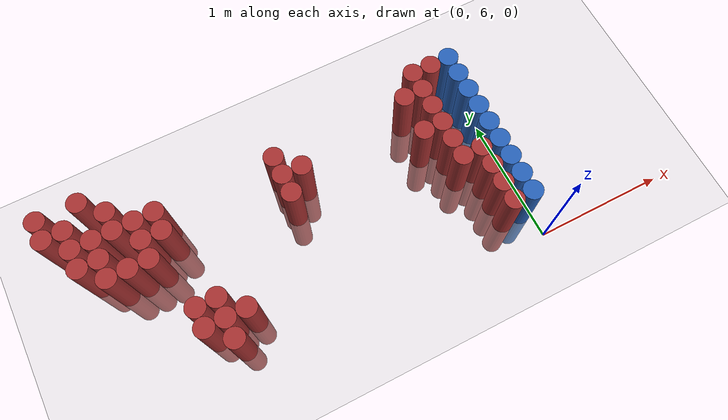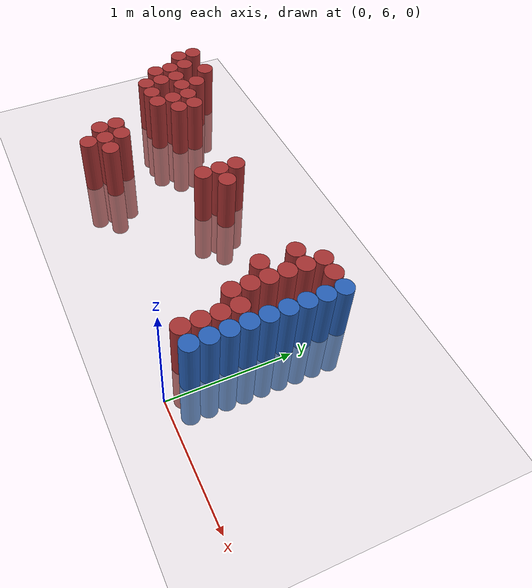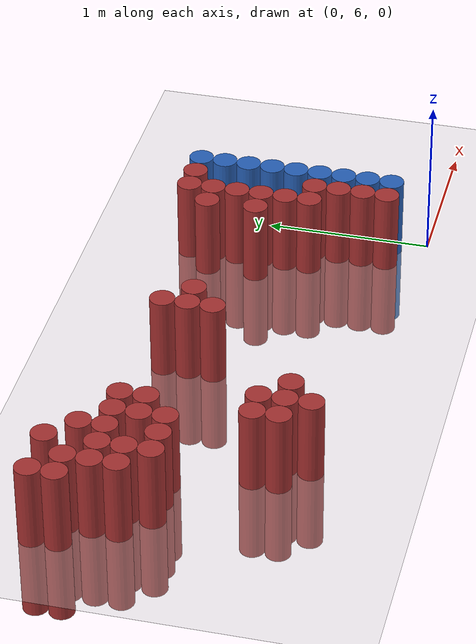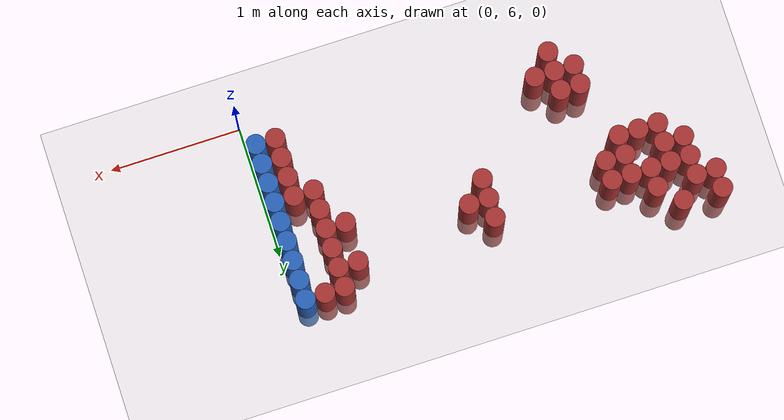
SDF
<sdf version="1.6">
 <world name="default">
  <model name="ground_plane">
   <static>1</static>
   <link name="link">
    <collision name="collision">
     <geometry><plane><normal>0 0 1</normal><size>100 100</size></plane></geometry>
     <surface><friction><ode><mu>100</mu><mu2>50</mu2></ode></friction></surface>
    </collision>
    <visual name="visual">
     <cast_shadows>0</cast_shadows>
     <geometry><plane><normal>0 0 1</normal><size>100 100</size></plane></geometry>
     <material>
      <script><uri>file://media/materials/scripts/gazebo.material</uri><name>Gazebo/Grey</name></script>
     </material>
    </visual>
   </link>
  </model>
  <model name="unit_cylinder_168">
   <static>1</static>
   <pose>-3.225000 7.425000 0.000000 0.000000 0.000000 0.000000</pose>
   <link name="link">
    <inertial>
     <mass>1</mass>
     <inertia><ixx>0.145833</ixx><ixy>0</ixy><ixz>0</ixz><iyy>0.145833</iyy><iyz>0</iyz><izz>0.125</izz></inertia>
    </inertial>
    <collision name="collision">
     <geometry><cylinder><radius>0.075000</radius><length>1</length></cylinder></geometry>
    </collision>
    <visual name="visual">
     <geometry><cylinder><radius>0.075000</radius><length>1</length></cylinder></geometry>
     <material>
      <ambient>0.648000 0.192000 0.192000 1</ambient>
      <diffuse>0.648000 0.192000 0.192000 1</diffuse>
     </material>
     <material>
      <script><name>Gazebo/Grey</name><uri>file://media/materials/scripts/gazebo.material</uri></script>
     </material>
    </visual>
   </link>
  </model>
  <model name="unit_cylinder_169">
   <static>1</static>
   <pose>-3.225000 7.575000 0.000000 0.000000 0.000000 0.000000</pose>
   <link name="link">
    <inertial>
     <mass>1</mass>
     <inertia><ixx>0.145833</ixx><ixy>0</ixy><ixz>0</ixz><iyy>0.145833</iyy><iyz>0</iyz><izz>0.125</izz></inertia>
    </inertial>
    <collision name="collision">
     <geometry><cylinder><radius>0.075000</radius><length>1</length></cylinder></geometry>
    </collision>
    <visual name="visual">
     <geometry><cylinder><radius>0.075000</radius><length>1</length></cylinder></geometry>
     <material>
      <ambient>0.648000 0.192000 0.192000 1</ambient>
      <diffuse>0.648000 0.192000 0.192000 1</diffuse>
     </material>
     <material>
      <script><name>Gazebo/Grey</name><uri>file://media/materials/scripts/gazebo.material</uri></script>
     </material>
    </visual>
   </link>
  </model>
  <model name="unit_cylinder_171">
   <static>1</static>
   <pose>-3.075000 7.125000 0.000000 0.000000 0.000000 0.000000</pose>
   <link name="link">
    <inertial>
     <mass>1</mass>
     <inertia><ixx>0.145833</ixx><ixy>0</ixy><ixz>0</ixz><iyy>0.145833</iyy><iyz>0</iyz><izz>0.125</izz></inertia>
    </inertial>
    <collision name="collision">
     <geometry><cylinder><radius>0.075000</radius><length>1</length></cylinder></geometry>
    </collision>
    <visual name="visual">
     <geometry><cylinder><radius>0.075000</radius><length>1</length></cylinder></geometry>
     <material>
      <ambient>0.648000 0.192000 0.192000 1</ambient>
      <diffuse>0.648000 0.192000 0.192000 1</diffuse>
     </material>
     <material>
      <script><name>Gazebo/Grey</name><uri>file://media/materials/scripts/gazebo.material</uri></script>
     </material>
    </visual>
   </link>
  </model>
  <model name="unit_cylinder_172">
   <static>1</static>
   <pose>-3.075000 7.275000 0.000000 0.000000 0.000000 0.000000</pose>
   <link name="link">
    <inertial>
     <mass>1</mass>
     <inertia><ixx>0.145833</ixx><ixy>0</ixy><ixz>0</ixz><iyy>0.145833</iyy><iyz>0</iyz><izz>0.125</izz></inertia>
    </inertial>
    <collision name="collision">
     <geometry><cylinder><radius>0.075000</radius><length>1</length></cylinder></geometry>
    </collision>
    <visual name="visual">
     <geometry><cylinder><radius>0.075000</radius><length>1</length></cylinder></geometry>
     <material>
      <ambient>0.648000 0.192000 0.192000 1</ambient>
      <diffuse>0.648000 0.192000 0.192000 1</diffuse>
     </material>
     <material>
      <script><name>Gazebo/Grey</name><uri>file://media/materials/scripts/gazebo.material</uri></script>
     </material>
    </visual>
   </link>
  </model>
  <model name="unit_cylinder_173">
   <static>1</static>
   <pose>-3.075000 7.425000 0.000000 0.000000 0.000000 0.000000</pose>
   <link name="link">
    <inertial>
     <mass>1</mass>
     <inertia><ixx>0.145833</ixx><ixy>0</ixy><ixz>0</ixz><iyy>0.145833</iyy><iyz>0</iyz><izz>0.125</izz></inertia>
    </inertial>
    <collision name="collision">
     <geometry><cylinder><radius>0.075000</radius><length>1</length></cylinder></geometry>
    </collision>
    <visual name="visual">
     <geometry><cylinder><radius>0.075000</radius><length>1</length></cylinder></geometry>
     <material>
      <ambient>0.648000 0.192000 0.192000 1</ambient>
      <diffuse>0.648000 0.192000 0.192000 1</diffuse>
     </material>
     <material>
      <script><name>Gazebo/Grey</name><uri>file://media/materials/scripts/gazebo.material</uri></script>
     </material>
    </visual>
   </link>
  </model>
  <model name="unit_cylinder_174">
   <static>1</static>
   <pose>-2.925000 6.975000 0.000000 0.000000 0.000000 0.000000</pose>
   <link name="link">
    <inertial>
     <mass>1</mass>
     <inertia><ixx>0.145833</ixx><ixy>0</ixy><ixz>0</ixz><iyy>0.145833</iyy><iyz>0</iyz><izz>0.125</izz></inertia>
    </inertial>
    <collision name="collision">
     <geometry><cylinder><radius>0.075000</radius><length>1</length></cylinder></geometry>
    </collision>
    <visual name="visual">
     <geometry><cylinder><radius>0.075000</radius><length>1</length></cylinder></geometry>
     <material>
      <ambient>0.648000 0.192000 0.192000 1</ambient>
      <diffuse>0.648000 0.192000 0.192000 1</diffuse>
     </material>
     <material>
      <script><name>Gazebo/Grey</name><uri>file://media/materials/scripts/gazebo.material</uri></script>
     </material>
    </visual>
   </link>
  </model>
  <model name="unit_cylinder_175">
   <static>1</static>
   <pose>-2.925000 7.125000 0.000000 0.000000 0.000000 0.000000</pose>
   <link name="link">
    <inertial>
     <mass>1</mass>
     <inertia><ixx>0.145833</ixx><ixy>0</ixy><ixz>0</ixz><iyy>0.145833</iyy><iyz>0</iyz><izz>0.125</izz></inertia>
    </inertial>
    <collision name="collision">
     <geometry><cylinder><radius>0.075000</radius><length>1</length></cylinder></geometry>
    </collision>
    <visual name="visual">
     <geometry><cylinder><radius>0.075000</radius><length>1</length></cylinder></geometry>
     <material>
      <ambient>0.648000 0.192000 0.192000 1</ambient>
      <diffuse>0.648000 0.192000 0.192000 1</diffuse>
     </material>
     <material>
      <script><name>Gazebo/Grey</name><uri>file://media/materials/scripts/gazebo.material</uri></script>
     </material>
    </visual>
   </link>
  </model>
  <model name="unit_cylinder_176">
   <static>1</static>
   <pose>-2.925000 7.275000 0.000000 0.000000 0.000000 0.000000</pose>
   <link name="link">
    <inertial>
     <mass>1</mass>
     <inertia><ixx>0.145833</ixx><ixy>0</ixy><ixz>0</ixz><iyy>0.145833</iyy><iyz>0</iyz><izz>0.125</izz></inertia>
    </inertial>
    <collision name="collision">
     <geometry><cylinder><radius>0.075000</radius><length>1</length></cylinder></geometry>
    </collision>
    <visual name="visual">
     <geometry><cylinder><radius>0.075000</radius><length>1</length></cylinder></geometry>
     <material>
      <ambient>0.648000 0.192000 0.192000 1</ambient>
      <diffuse>0.648000 0.192000 0.192000 1</diffuse>
     </material>
     <material>
      <script><name>Gazebo/Grey</name><uri>file://media/materials/scripts/gazebo.material</uri></script>
     </material>
    </visual>
   </link>
  </model>
  <model name="unit_cylinder_177">
   <static>1</static>
   <pose>-2.925000 7.575000 0.000000 0.000000 0.000000 0.000000</pose>
   <link name="link">
    <inertial>
     <mass>1</mass>
     <inertia><ixx>0.145833</ixx><ixy>0</ixy><ixz>0</ixz><iyy>0.145833</iyy><iyz>0</iyz><izz>0.125</izz></inertia>
    </inertial>
    <collision name="collision">
     <geometry><cylinder><radius>0.075000</radius><length>1</length></cylinder></geometry>
    </collision>
    <visual name="visual">
     <geometry><cylinder><radius>0.075000</radius><length>1</length></cylinder></geometry>
     <material>
      <ambient>0.648000 0.192000 0.192000 1</ambient>
      <diffuse>0.648000 0.192000 0.192000 1</diffuse>
     </material>
     <material>
      <script><name>Gazebo/Grey</name><uri>file://media/materials/scripts/gazebo.material</uri></script>
     </material>
    </visual>
   </link>
  </model>
  <model name="unit_cylinder_178">
   <static>1</static>
   <pose>-2.775000 6.975000 0.000000 0.000000 0.000000 0.000000</pose>
   <link name="link">
    <inertial>
     <mass>1</mass>
     <inertia><ixx>0.145833</ixx><ixy>0</ixy><ixz>0</ixz><iyy>0.145833</iyy><iyz>0</iyz><izz>0.125</izz></inertia>
    </inertial>
    <collision name="collision">
     <geometry><cylinder><radius>0.075000</radius><length>1</length></cylinder></geometry>
    </collision>
    <visual name="visual">
     <geometry><cylinder><radius>0.075000</radius><length>1</length></cylinder></geometry>
     <material>
      <ambient>0.648000 0.192000 0.192000 1</ambient>
      <diffuse>0.648000 0.192000 0.192000 1</diffuse>
     </material>
     <material>
      <script><name>Gazebo/Grey</name><uri>file://media/materials/scripts/gazebo.material</uri></script>
     </material>
    </visual>
   </link>
  </model>
  <model name="unit_cylinder_179">
   <static>1</static>
   <pose>-2.775000 7.275000 0.000000 0.000000 0.000000 0.000000</pose>
   <link name="link">
    <inertial>
     <mass>1</mass>
     <inertia><ixx>0.145833</ixx><ixy>0</ixy><ixz>0</ixz><iyy>0.145833</iyy><iyz>0</iyz><izz>0.125</izz></inertia>
    </inertial>
    <collision name="collision">
     <geometry><cylinder><radius>0.075000</radius><length>1</length></cylinder></geometry>
    </collision>
    <visual name="visual">
     <geometry><cylinder><radius>0.075000</radius><length>1</length></cylinder></geometry>
     <material>
      <ambient>0.648000 0.192000 0.192000 1</ambient>
      <diffuse>0.648000 0.192000 0.192000 1</diffuse>
     </material>
     <material>
      <script><name>Gazebo/Grey</name><uri>file://media/materials/scripts/gazebo.material</uri></script>
     </material>
    </visual>
   </link>
  </model>
  <model name="unit_cylinder_180">
   <static>1</static>
   <pose>-2.775000 7.425000 0.000000 0.000000 0.000000 0.000000</pose>
   <link name="link">
    <inertial>
     <mass>1</mass>
     <inertia><ixx>0.145833</ixx><ixy>0</ixy><ixz>0</ixz><iyy>0.145833</iyy><iyz>0</iyz><izz>0.125</izz></inertia>
    </inertial>
    <collision name="collision">
     <geometry><cylinder><radius>0.075000</radius><length>1</length></cylinder></geometry>
    </collision>
    <visual name="visual">
     <geometry><cylinder><radius>0.075000</radius><length>1</length></cylinder></geometry>
     <material>
      <ambient>0.648000 0.192000 0.192000 1</ambient>
      <diffuse>0.648000 0.192000 0.192000 1</diffuse>
     </material>
     <material>
      <script><name>Gazebo/Grey</name><uri>file://media/materials/scripts/gazebo.material</uri></script>
     </material>
    </visual>
   </link>
  </model>
  <model name="unit_cylinder_182">
   <static>1</static>
   <pose>-2.625000 6.975000 0.000000 0.000000 0.000000 0.000000</pose>
   <link name="link">
    <inertial>
     <mass>1</mass>
     <inertia><ixx>0.145833</ixx><ixy>0</ixy><ixz>0</ixz><iyy>0.145833</iyy><iyz>0</iyz><izz>0.125</izz></inertia>
    </inertial>
    <collision name="collision">
     <geometry><cylinder><radius>0.075000</radius><length>1</length></cylinder></geometry>
    </collision>
    <visual name="visual">
     <geometry><cylinder><radius>0.075000</radius><length>1</length></cylinder></geometry>
     <material>
      <ambient>0.648000 0.192000 0.192000 1</ambient>
      <diffuse>0.648000 0.192000 0.192000 1</diffuse>
     </material>
     <material>
      <script><name>Gazebo/Grey</name><uri>file://media/materials/scripts/gazebo.material</uri></script>
     </material>
    </visual>
   </link>
  </model>
  <model name="unit_cylinder_183">
   <static>1</static>
   <pose>-2.625000 7.125000 0.000000 0.000000 0.000000 0.000000</pose>
   <link name="link">
    <inertial>
     <mass>1</mass>
     <inertia><ixx>0.145833</ixx><ixy>0</ixy><ixz>0</ixz><iyy>0.145833</iyy><iyz>0</iyz><izz>0.125</izz></inertia>
    </inertial>
    <collision name="collision">
     <geometry><cylinder><radius>0.075000</radius><length>1</length></cylinder></geometry>
    </collision>
    <visual name="visual">
     <geometry><cylinder><radius>0.075000</radius><length>1</length></cylinder></geometry>
     <material>
      <ambient>0.648000 0.192000 0.192000 1</ambient>
      <diffuse>0.648000 0.192000 0.192000 1</diffuse>
     </material>
     <material>
      <script><name>Gazebo/Grey</name><uri>file://media/materials/scripts/gazebo.material</uri></script>
     </material>
    </visual>
   </link>
  </model>
  <model name="unit_cylinder_184">
   <static>1</static>
   <pose>-2.625000 7.275000 0.000000 0.000000 0.000000 0.000000</pose>
   <link name="link">
    <inertial>
     <mass>1</mass>
     <inertia><ixx>0.145833</ixx><ixy>0</ixy><ixz>0</ixz><iyy>0.145833</iyy><iyz>0</iyz><izz>0.125</izz></inertia>
    </inertial>
    <collision name="collision">
     <geometry><cylinder><radius>0.075000</radius><length>1</length></cylinder></geometry>
    </collision>
    <visual name="visual">
     <geometry><cylinder><radius>0.075000</radius><length>1</length></cylinder></geometry>
     <material>
      <ambient>0.648000 0.192000 0.192000 1</ambient>
      <diffuse>0.648000 0.192000 0.192000 1</diffuse>
     </material>
     <material>
      <script><name>Gazebo/Grey</name><uri>file://media/materials/scripts/gazebo.material</uri></script>
     </material>
    </visual>
   </link>
  </model>
  <model name="unit_cylinder_188">
   <static>1</static>
   <pose>-2.475000 6.375000 0.000000 0.000000 0.000000 0.000000</pose>
   <link name="link">
    <inertial>
     <mass>1</mass>
     <inertia><ixx>0.145833</ixx><ixy>0</ixy><ixz>0</ixz><iyy>0.145833</iyy><iyz>0</iyz><izz>0.125</izz></inertia>
    </inertial>
    <collision name="collision">
     <geometry><cylinder><radius>0.075000</radius><length>1</length></cylinder></geometry>
    </collision>
    <visual name="visual">
     <geometry><cylinder><radius>0.075000</radius><length>1</length></cylinder></geometry>
     <material>
      <ambient>0.648000 0.192000 0.192000 1</ambient>
      <diffuse>0.648000 0.192000 0.192000 1</diffuse>
     </material>
     <material>
      <script><name>Gazebo/Grey</name><uri>file://media/materials/scripts/gazebo.material</uri></script>
     </material>
    </visual>
   </link>
  </model>
  <model name="unit_cylinder_189">
   <static>1</static>
   <pose>-2.475000 6.525000 0.000000 0.000000 0.000000 0.000000</pose>
   <link name="link">
    <inertial>
     <mass>1</mass>
     <inertia><ixx>0.145833</ixx><ixy>0</ixy><ixz>0</ixz><iyy>0.145833</iyy><iyz>0</iyz><izz>0.125</izz></inertia>
    </inertial>
    <collision name="collision">
     <geometry><cylinder><radius>0.075000</radius><length>1</length></cylinder></geometry>
    </collision>
    <visual name="visual">
     <geometry><cylinder><radius>0.075000</radius><length>1</length></cylinder></geometry>
     <material>
      <ambient>0.648000 0.192000 0.192000 1</ambient>
      <diffuse>0.648000 0.192000 0.192000 1</diffuse>
     </material>
     <material>
      <script><name>Gazebo/Grey</name><uri>file://media/materials/scripts/gazebo.material</uri></script>
     </material>
    </visual>
   </link>
  </model>
  <model name="unit_cylinder_190">
   <static>1</static>
   <pose>-2.475000 7.125000 0.000000 0.000000 0.000000 0.000000</pose>
   <link name="link">
    <inertial>
     <mass>1</mass>
     <inertia><ixx>0.145833</ixx><ixy>0</ixy><ixz>0</ixz><iyy>0.145833</iyy><iyz>0</iyz><izz>0.125</izz></inertia>
    </inertial>
    <collision name="collision">
     <geometry><cylinder><radius>0.075000</radius><length>1</length></cylinder></geometry>
    </collision>
    <visual name="visual">
     <geometry><cylinder><radius>0.075000</radius><length>1</length></cylinder></geometry>
     <material>
      <ambient>0.648000 0.192000 0.192000 1</ambient>
      <diffuse>0.648000 0.192000 0.192000 1</diffuse>
     </material>
     <material>
      <script><name>Gazebo/Grey</name><uri>file://media/materials/scripts/gazebo.material</uri></script>
     </material>
    </visual>
   </link>
  </model>
  <model name="unit_cylinder_191">
   <static>1</static>
   <pose>-2.475000 7.275000 0.000000 0.000000 0.000000 0.000000</pose>
   <link name="link">
    <inertial>
     <mass>1</mass>
     <inertia><ixx>0.145833</ixx><ixy>0</ixy><ixz>0</ixz><iyy>0.145833</iyy><iyz>0</iyz><izz>0.125</izz></inertia>
    </inertial>
    <collision name="collision">
     <geometry><cylinder><radius>0.075000</radius><length>1</length></cylinder></geometry>
    </collision>
    <visual name="visual">
     <geometry><cylinder><radius>0.075000</radius><length>1</length></cylinder></geometry>
     <material>
      <ambient>0.648000 0.192000 0.192000 1</ambient>
      <diffuse>0.648000 0.192000 0.192000 1</diffuse>
     </material>
     <material>
      <script><name>Gazebo/Grey</name><uri>file://media/materials/scripts/gazebo.material</uri></script>
     </material>
    </visual>
   </link>
  </model>
  <model name="unit_cylinder_194">
   <static>1</static>
   <pose>-2.325000 6.225000 0.000000 0.000000 0.000000 0.000000</pose>
   <link name="link">
    <inertial>
     <mass>1</mass>
     <inertia><ixx>0.145833</ixx><ixy>0</ixy><ixz>0</ixz><iyy>0.145833</iyy><iyz>0</iyz><izz>0.125</izz></inertia>
    </inertial>
    <collision name="collision">
     <geometry><cylinder><radius>0.075000</radius><length>1</length></cylinder></geometry>
    </collision>
    <visual name="visual">
     <geometry><cylinder><radius>0.075000</radius><length>1</length></cylinder></geometry>
     <material>
      <ambient>0.648000 0.192000 0.192000 1</ambient>
      <diffuse>0.648000 0.192000 0.192000 1</diffuse>
     </material>
     <material>
      <script><name>Gazebo/Grey</name><uri>file://media/materials/scripts/gazebo.material</uri></script>
     </material>
    </visual>
   </link>
  </model>
  <model name="unit_cylinder_195">
   <static>1</static>
   <pose>-2.325000 6.375000 0.000000 0.000000 0.000000 0.000000</pose>
   <link name="link">
    <inertial>
     <mass>1</mass>
     <inertia><ixx>0.145833</ixx><ixy>0</ixy><ixz>0</ixz><iyy>0.145833</iyy><iyz>0</iyz><izz>0.125</izz></inertia>
    </inertial>
    <collision name="collision">
     <geometry><cylinder><radius>0.075000</radius><length>1</length></cylinder></geometry>
    </collision>
    <visual name="visual">
     <geometry><cylinder><radius>0.075000</radius><length>1</length></cylinder></geometry>
     <material>
      <ambient>0.648000 0.192000 0.192000 1</ambient>
      <diffuse>0.648000 0.192000 0.192000 1</diffuse>
     </material>
     <material>
      <script><name>Gazebo/Grey</name><uri>file://media/materials/scripts/gazebo.material</uri></script>
     </material>
    </visual>
   </link>
  </model>
  <model name="unit_cylinder_196">
   <static>1</static>
   <pose>-2.325000 6.525000 0.000000 0.000000 0.000000 0.000000</pose>
   <link name="link">
    <inertial>
     <mass>1</mass>
     <inertia><ixx>0.145833</ixx><ixy>0</ixy><ixz>0</ixz><iyy>0.145833</iyy><iyz>0</iyz><izz>0.125</izz></inertia>
    </inertial>
    <collision name="collision">
     <geometry><cylinder><radius>0.075000</radius><length>1</length></cylinder></geometry>
    </collision>
    <visual name="visual">
     <geometry><cylinder><radius>0.075000</radius><length>1</length></cylinder></geometry>
     <material>
      <ambient>0.648000 0.192000 0.192000 1</ambient>
      <diffuse>0.648000 0.192000 0.192000 1</diffuse>
     </material>
     <material>
      <script><name>Gazebo/Grey</name><uri>file://media/materials/scripts/gazebo.material</uri></script>
     </material>
    </visual>
   </link>
  </model>
  <model name="unit_cylinder_199">
   <static>1</static>
   <pose>-2.175000 6.375000 0.000000 0.000000 0.000000 0.000000</pose>
   <link name="link">
    <inertial>
     <mass>1</mass>
     <inertia><ixx>0.145833</ixx><ixy>0</ixy><ixz>0</ixz><iyy>0.145833</iyy><iyz>0</iyz><izz>0.125</izz></inertia>
    </inertial>
    <collision name="collision">
     <geometry><cylinder><radius>0.075000</radius><length>1</length></cylinder></geometry>
    </collision>
    <visual name="visual">
     <geometry><cylinder><radius>0.075000</radius><length>1</length></cylinder></geometry>
     <material>
      <ambient>0.648000 0.192000 0.192000 1</ambient>
      <diffuse>0.648000 0.192000 0.192000 1</diffuse>
     </material>
     <material>
      <script><name>Gazebo/Grey</name><uri>file://media/materials/scripts/gazebo.material</uri></script>
     </material>
    </visual>
   </link>
  </model>
  <model name="unit_cylinder_207">
   <static>1</static>
   <pose>-1.575000 6.975000 0.000000 0.000000 0.000000 0.000000</pose>
   <link name="link">
    <inertial>
     <mass>1</mass>
     <inertia><ixx>0.145833</ixx><ixy>0</ixy><ixz>0</ixz><iyy>0.145833</iyy><iyz>0</iyz><izz>0.125</izz></inertia>
    </inertial>
    <collision name="collision">
     <geometry><cylinder><radius>0.075000</radius><length>1</length></cylinder></geometry>
    </collision>
    <visual name="visual">
     <geometry><cylinder><radius>0.075000</radius><length>1</length></cylinder></geometry>
     <material>
      <ambient>0.648000 0.192000 0.192000 1</ambient>
      <diffuse>0.648000 0.192000 0.192000 1</diffuse>
     </material>
     <material>
      <script><name>Gazebo/Grey</name><uri>file://media/materials/scripts/gazebo.material</uri></script>
     </material>
    </visual>
   </link>
  </model>
  <model name="unit_cylinder_208">
   <static>1</static>
   <pose>-1.575000 7.125000 0.000000 0.000000 0.000000 0.000000</pose>
   <link name="link">
    <inertial>
     <mass>1</mass>
     <inertia><ixx>0.145833</ixx><ixy>0</ixy><ixz>0</ixz><iyy>0.145833</iyy><iyz>0</iyz><izz>0.125</izz></inertia>
    </inertial>
    <collision name="collision">
     <geometry><cylinder><radius>0.075000</radius><length>1</length></cylinder></geometry>
    </collision>
    <visual name="visual">
     <geometry><cylinder><radius>0.075000</radius><length>1</length></cylinder></geometry>
     <material>
      <ambient>0.648000 0.192000 0.192000 1</ambient>
      <diffuse>0.648000 0.192000 0.192000 1</diffuse>
     </material>
     <material>
      <script><name>Gazebo/Grey</name><uri>file://media/materials/scripts/gazebo.material</uri></script>
     </material>
    </visual>
   </link>
  </model>
  <model name="unit_cylinder_209">
   <static>1</static>
   <pose>-1.575000 7.275000 0.000000 0.000000 0.000000 0.000000</pose>
   <link name="link">
    <inertial>
     <mass>1</mass>
     <inertia><ixx>0.145833</ixx><ixy>0</ixy><ixz>0</ixz><iyy>0.145833</iyy><iyz>0</iyz><izz>0.125</izz></inertia>
    </inertial>
    <collision name="collision">
     <geometry><cylinder><radius>0.075000</radius><length>1</length></cylinder></geometry>
    </collision>
    <visual name="visual">
     <geometry><cylinder><radius>0.075000</radius><length>1</length></cylinder></geometry>
     <material>
      <ambient>0.648000 0.192000 0.192000 1</ambient>
      <diffuse>0.648000 0.192000 0.192000 1</diffuse>
     </material>
     <material>
      <script><name>Gazebo/Grey</name><uri>file://media/materials/scripts/gazebo.material</uri></script>
     </material>
    </visual>
   </link>
  </model>
  <model name="unit_cylinder_212">
   <static>1</static>
   <pose>-1.425000 7.125000 0.000000 0.000000 0.000000 0.000000</pose>
   <link name="link">
    <inertial>
     <mass>1</mass>
     <inertia><ixx>0.145833</ixx><ixy>0</ixy><ixz>0</ixz><iyy>0.145833</iyy><iyz>0</iyz><izz>0.125</izz></inertia>
    </inertial>
    <collision name="collision">
     <geometry><cylinder><radius>0.075000</radius><length>1</length></cylinder></geometry>
    </collision>
    <visual name="visual">
     <geometry><cylinder><radius>0.075000</radius><length>1</length></cylinder></geometry>
     <material>
      <ambient>0.648000 0.192000 0.192000 1</ambient>
      <diffuse>0.648000 0.192000 0.192000 1</diffuse>
     </material>
     <material>
      <script><name>Gazebo/Grey</name><uri>file://media/materials/scripts/gazebo.material</uri></script>
     </material>
    </visual>
   </link>
  </model>
  <model name="unit_cylinder_229">
   <static>1</static>
   <pose>-0.525000 6.975000 0.000000 0.000000 0.000000 0.000000</pose>
   <link name="link">
    <inertial>
     <mass>1</mass>
     <inertia><ixx>0.145833</ixx><ixy>0</ixy><ixz>0</ixz><iyy>0.145833</iyy><iyz>0</iyz><izz>0.125</izz></inertia>
    </inertial>
    <collision name="collision">
     <geometry><cylinder><radius>0.075000</radius><length>1</length></cylinder></geometry>
    </collision>
    <visual name="visual">
     <geometry><cylinder><radius>0.075000</radius><length>1</length></cylinder></geometry>
     <material>
      <ambient>0.648000 0.192000 0.192000 1</ambient>
      <diffuse>0.648000 0.192000 0.192000 1</diffuse>
     </material>
     <material>
      <script><name>Gazebo/Grey</name><uri>file://media/materials/scripts/gazebo.material</uri></script>
     </material>
    </visual>
   </link>
  </model>
  <model name="unit_cylinder_230">
   <static>1</static>
   <pose>-0.525000 7.275000 0.000000 0.000000 0.000000 0.000000</pose>
   <link name="link">
    <inertial>
     <mass>1</mass>
     <inertia><ixx>0.145833</ixx><ixy>0</ixy><ixz>0</ixz><iyy>0.145833</iyy><iyz>0</iyz><izz>0.125</izz></inertia>
    </inertial>
    <collision name="collision">
     <geometry><cylinder><radius>0.075000</radius><length>1</length></cylinder></geometry>
    </collision>
    <visual name="visual">
     <geometry><cylinder><radius>0.075000</radius><length>1</length></cylinder></geometry>
     <material>
      <ambient>0.648000 0.192000 0.192000 1</ambient>
      <diffuse>0.648000 0.192000 0.192000 1</diffuse>
     </material>
     <material>
      <script><name>Gazebo/Grey</name><uri>file://media/materials/scripts/gazebo.material</uri></script>
     </material>
    </visual>
   </link>
  </model>
  <model name="unit_cylinder_238">
   <static>1</static>
   <pose>-0.375000 6.675000 0.000000 0.000000 0.000000 0.000000</pose>
   <link name="link">
    <inertial>
     <mass>1</mass>
     <inertia><ixx>0.145833</ixx><ixy>0</ixy><ixz>0</ixz><iyy>0.145833</iyy><iyz>0</iyz><izz>0.125</izz></inertia>
    </inertial>
    <collision name="collision">
     <geometry><cylinder><radius>0.075000</radius><length>1</length></cylinder></geometry>
    </collision>
    <visual name="visual">
     <geometry><cylinder><radius>0.075000</radius><length>1</length></cylinder></geometry>
     <material>
      <ambient>0.648000 0.192000 0.192000 1</ambient>
      <diffuse>0.648000 0.192000 0.192000 1</diffuse>
     </material>
     <material>
      <script><name>Gazebo/Grey</name><uri>file://media/materials/scripts/gazebo.material</uri></script>
     </material>
    </visual>
   </link>
  </model>
  <model name="unit_cylinder_239">
   <static>1</static>
   <pose>-0.375000 6.825000 0.000000 0.000000 0.000000 0.000000</pose>
   <link name="link">
    <inertial>
     <mass>1</mass>
     <inertia><ixx>0.145833</ixx><ixy>0</ixy><ixz>0</ixz><iyy>0.145833</iyy><iyz>0</iyz><izz>0.125</izz></inertia>
    </inertial>
    <collision name="collision">
     <geometry><cylinder><radius>0.075000</radius><length>1</length></cylinder></geometry>
    </collision>
    <visual name="visual">
     <geometry><cylinder><radius>0.075000</radius><length>1</length></cylinder></geometry>
     <material>
      <ambient>0.648000 0.192000 0.192000 1</ambient>
      <diffuse>0.648000 0.192000 0.192000 1</diffuse>
     </material>
     <material>
      <script><name>Gazebo/Grey</name><uri>file://media/materials/scripts/gazebo.material</uri></script>
     </material>
    </visual>
   </link>
  </model>
  <model name="unit_cylinder_240">
   <static>1</static>
   <pose>-0.375000 6.975000 0.000000 0.000000 0.000000 0.000000</pose>
   <link name="link">
    <inertial>
     <mass>1</mass>
     <inertia><ixx>0.145833</ixx><ixy>0</ixy><ixz>0</ixz><iyy>0.145833</iyy><iyz>0</iyz><izz>0.125</izz></inertia>
    </inertial>
    <collision name="collision">
     <geometry><cylinder><radius>0.075000</radius><length>1</length></cylinder></geometry>
    </collision>
    <visual name="visual">
     <geometry><cylinder><radius>0.075000</radius><length>1</length></cylinder></geometry>
     <material>
      <ambient>0.648000 0.192000 0.192000 1</ambient>
      <diffuse>0.648000 0.192000 0.192000 1</diffuse>
     </material>
     <material>
      <script><name>Gazebo/Grey</name><uri>file://media/materials/scripts/gazebo.material</uri></script>
     </material>
    </visual>
   </link>
  </model>
  <model name="unit_cylinder_241">
   <static>1</static>
   <pose>-0.375000 7.125000 0.000000 0.000000 0.000000 0.000000</pose>
   <link name="link">
    <inertial>
     <mass>1</mass>
     <inertia><ixx>0.145833</ixx><ixy>0</ixy><ixz>0</ixz><iyy>0.145833</iyy><iyz>0</iyz><izz>0.125</izz></inertia>
    </inertial>
    <collision name="collision">
     <geometry><cylinder><radius>0.075000</radius><length>1</length></cylinder></geometry>
    </collision>
    <visual name="visual">
     <geometry><cylinder><radius>0.075000</radius><length>1</length></cylinder></geometry>
     <material>
      <ambient>0.648000 0.192000 0.192000 1</ambient>
      <diffuse>0.648000 0.192000 0.192000 1</diffuse>
     </material>
     <material>
      <script><name>Gazebo/Grey</name><uri>file://media/materials/scripts/gazebo.material</uri></script>
     </material>
    </visual>
   </link>
  </model>
  <model name="unit_cylinder_242">
   <static>1</static>
   <pose>-0.375000 7.275000 0.000000 0.000000 0.000000 0.000000</pose>
   <link name="link">
    <inertial>
     <mass>1</mass>
     <inertia><ixx>0.145833</ixx><ixy>0</ixy><ixz>0</ixz><iyy>0.145833</iyy><iyz>0</iyz><izz>0.125</izz></inertia>
    </inertial>
    <collision name="collision">
     <geometry><cylinder><radius>0.075000</radius><length>1</length></cylinder></geometry>
    </collision>
    <visual name="visual">
     <geometry><cylinder><radius>0.075000</radius><length>1</length></cylinder></geometry>
     <material>
      <ambient>0.648000 0.192000 0.192000 1</ambient>
      <diffuse>0.648000 0.192000 0.192000 1</diffuse>
     </material>
     <material>
      <script><name>Gazebo/Grey</name><uri>file://media/materials/scripts/gazebo.material</uri></script>
     </material>
    </visual>
   </link>
  </model>
  <model name="unit_cylinder_243">
   <static>1</static>
   <pose>-0.375000 7.425000 0.000000 0.000000 0.000000 0.000000</pose>
   <link name="link">
    <inertial>
     <mass>1</mass>
     <inertia><ixx>0.145833</ixx><ixy>0</ixy><ixz>0</ixz><iyy>0.145833</iyy><iyz>0</iyz><izz>0.125</izz></inertia>
    </inertial>
    <collision name="collision">
     <geometry><cylinder><radius>0.075000</radius><length>1</length></cylinder></geometry>
    </collision>
    <visual name="visual">
     <geometry><cylinder><radius>0.075000</radius><length>1</length></cylinder></geometry>
     <material>
      <ambient>0.648000 0.192000 0.192000 1</ambient>
      <diffuse>0.648000 0.192000 0.192000 1</diffuse>
     </material>
     <material>
      <script><name>Gazebo/Grey</name><uri>file://media/materials/scripts/gazebo.material</uri></script>
     </material>
    </visual>
   </link>
  </model>
  <model name="unit_cylinder_253">
   <static>1</static>
   <pose>-0.225000 6.225000 0.000000 0.000000 0.000000 0.000000</pose>
   <link name="link">
    <inertial>
     <mass>1</mass>
     <inertia><ixx>0.145833</ixx><ixy>0</ixy><ixz>0</ixz><iyy>0.145833</iyy><iyz>0</iyz><izz>0.125</izz></inertia>
    </inertial>
    <collision name="collision">
     <geometry><cylinder><radius>0.075000</radius><length>1</length></cylinder></geometry>
    </collision>
    <visual name="visual">
     <geometry><cylinder><radius>0.075000</radius><length>1</length></cylinder></geometry>
     <material>
      <ambient>0.648000 0.192000 0.192000 1</ambient>
      <diffuse>0.648000 0.192000 0.192000 1</diffuse>
     </material>
     <material>
      <script><name>Gazebo/Grey</name><uri>file://media/materials/scripts/gazebo.material</uri></script>
     </material>
    </visual>
   </link>
  </model>
  <model name="unit_cylinder_254">
   <static>1</static>
   <pose>-0.225000 6.375000 0.000000 0.000000 0.000000 0.000000</pose>
   <link name="link">
    <inertial>
     <mass>1</mass>
     <inertia><ixx>0.145833</ixx><ixy>0</ixy><ixz>0</ixz><iyy>0.145833</iyy><iyz>0</iyz><izz>0.125</izz></inertia>
    </inertial>
    <collision name="collision">
     <geometry><cylinder><radius>0.075000</radius><length>1</length></cylinder></geometry>
    </collision>
    <visual name="visual">
     <geometry><cylinder><radius>0.075000</radius><length>1</length></cylinder></geometry>
     <material>
      <ambient>0.648000 0.192000 0.192000 1</ambient>
      <diffuse>0.648000 0.192000 0.192000 1</diffuse>
     </material>
     <material>
      <script><name>Gazebo/Grey</name><uri>file://media/materials/scripts/gazebo.material</uri></script>
     </material>
    </visual>
   </link>
  </model>
  <model name="unit_cylinder_255">
   <static>1</static>
   <pose>-0.225000 6.525000 0.000000 0.000000 0.000000 0.000000</pose>
   <link name="link">
    <inertial>
     <mass>1</mass>
     <inertia><ixx>0.145833</ixx><ixy>0</ixy><ixz>0</ixz><iyy>0.145833</iyy><iyz>0</iyz><izz>0.125</izz></inertia>
    </inertial>
    <collision name="collision">
     <geometry><cylinder><radius>0.075000</radius><length>1</length></cylinder></geometry>
    </collision>
    <visual name="visual">
     <geometry><cylinder><radius>0.075000</radius><length>1</length></cylinder></geometry>
     <material>
      <ambient>0.648000 0.192000 0.192000 1</ambient>
      <diffuse>0.648000 0.192000 0.192000 1</diffuse>
     </material>
     <material>
      <script><name>Gazebo/Grey</name><uri>file://media/materials/scripts/gazebo.material</uri></script>
     </material>
    </visual>
   </link>
  </model>
  <model name="unit_cylinder_256">
   <static>1</static>
   <pose>-0.225000 6.675000 0.000000 0.000000 0.000000 0.000000</pose>
   <link name="link">
    <inertial>
     <mass>1</mass>
     <inertia><ixx>0.145833</ixx><ixy>0</ixy><ixz>0</ixz><iyy>0.145833</iyy><iyz>0</iyz><izz>0.125</izz></inertia>
    </inertial>
    <collision name="collision">
     <geometry><cylinder><radius>0.075000</radius><length>1</length></cylinder></geometry>
    </collision>
    <visual name="visual">
     <geometry><cylinder><radius>0.075000</radius><length>1</length></cylinder></geometry>
     <material>
      <ambient>0.648000 0.192000 0.192000 1</ambient>
      <diffuse>0.648000 0.192000 0.192000 1</diffuse>
     </material>
     <material>
      <script><name>Gazebo/Grey</name><uri>file://media/materials/scripts/gazebo.material</uri></script>
     </material>
    </visual>
   </link>
  </model>
  <model name="unit_cylinder_257">
   <static>1</static>
   <pose>-0.225000 7.425000 0.000000 0.000000 0.000000 0.000000</pose>
   <link name="link">
    <inertial>
     <mass>1</mass>
     <inertia><ixx>0.145833</ixx><ixy>0</ixy><ixz>0</ixz><iyy>0.145833</iyy><iyz>0</iyz><izz>0.125</izz></inertia>
    </inertial>
    <collision name="collision">
     <geometry><cylinder><radius>0.075000</radius><length>1</length></cylinder></geometry>
    </collision>
    <visual name="visual">
     <geometry><cylinder><radius>0.075000</radius><length>1</length></cylinder></geometry>
     <material>
      <ambient>0.648000 0.192000 0.192000 1</ambient>
      <diffuse>0.648000 0.192000 0.192000 1</diffuse>
     </material>
     <material>
      <script><name>Gazebo/Grey</name><uri>file://media/materials/scripts/gazebo.material</uri></script>
     </material>
    </visual>
   </link>
  </model>
  <model name="unit_cylinder_270">
   <static>1</static>
   <pose>-0.075000 6.225000 0.000000 0.000000 0.000000 0.000000</pose>
   <link name="link">
    <inertial>
     <mass>1</mass>
     <inertia><ixx>0.145833</ixx><ixy>0</ixy><ixz>0</ixz><iyy>0.145833</iyy><iyz>0</iyz><izz>0.125</izz></inertia>
    </inertial>
    <collision name="collision">
     <geometry><cylinder><radius>0.075000</radius><length>1</length></cylinder></geometry>
    </collision>
    <visual name="visual">
     <geometry><cylinder><radius>0.075000</radius><length>1</length></cylinder></geometry>
     <material>
      <ambient>0.152000 0.379000 0.720000 1</ambient>
      <diffuse>0.152000 0.379000 0.720000 1</diffuse>
     </material>
     <material>
      <script><name>Gazebo/Grey</name><uri>file://media/materials/scripts/gazebo.material</uri></script>
     </material>
    </visual>
   </link>
  </model>
  <model name="unit_cylinder_271">
   <static>1</static>
   <pose>-0.075000 6.375000 0.000000 0.000000 0.000000 0.000000</pose>
   <link name="link">
    <inertial>
     <mass>1</mass>
     <inertia><ixx>0.145833</ixx><ixy>0</ixy><ixz>0</ixz><iyy>0.145833</iyy><iyz>0</iyz><izz>0.125</izz></inertia>
    </inertial>
    <collision name="collision">
     <geometry><cylinder><radius>0.075000</radius><length>1</length></cylinder></geometry>
    </collision>
    <visual name="visual">
     <geometry><cylinder><radius>0.075000</radius><length>1</length></cylinder></geometry>
     <material>
      <ambient>0.152000 0.379000 0.720000 1</ambient>
      <diffuse>0.152000 0.379000 0.720000 1</diffuse>
     </material>
     <material>
      <script><name>Gazebo/Grey</name><uri>file://media/materials/scripts/gazebo.material</uri></script>
     </material>
    </visual>
   </link>
  </model>
  <model name="unit_cylinder_272">
   <static>1</static>
   <pose>-0.075000 6.525000 0.000000 0.000000 0.000000 0.000000</pose>
   <link name="link">
    <inertial>
     <mass>1</mass>
     <inertia><ixx>0.145833</ixx><ixy>0</ixy><ixz>0</ixz><iyy>0.145833</iyy><iyz>0</iyz><izz>0.125</izz></inertia>
    </inertial>
    <collision name="collision">
     <geometry><cylinder><radius>0.075000</radius><length>1</length></cylinder></geometry>
    </collision>
    <visual name="visual">
     <geometry><cylinder><radius>0.075000</radius><length>1</length></cylinder></geometry>
     <material>
      <ambient>0.152000 0.379000 0.720000 1</ambient>
      <diffuse>0.152000 0.379000 0.720000 1</diffuse>
     </material>
     <material>
      <script><name>Gazebo/Grey</name><uri>file://media/materials/scripts/gazebo.material</uri></script>
     </material>
    </visual>
   </link>
  </model>
  <model name="unit_cylinder_273">
   <static>1</static>
   <pose>-0.075000 6.675000 0.000000 0.000000 0.000000 0.000000</pose>
   <link name="link">
    <inertial>
     <mass>1</mass>
     <inertia><ixx>0.145833</ixx><ixy>0</ixy><ixz>0</ixz><iyy>0.145833</iyy><iyz>0</iyz><izz>0.125</izz></inertia>
    </inertial>
    <collision name="collision">
     <geometry><cylinder><radius>0.075000</radius><length>1</length></cylinder></geometry>
    </collision>
    <visual name="visual">
     <geometry><cylinder><radius>0.075000</radius><length>1</length></cylinder></geometry>
     <material>
      <ambient>0.152000 0.379000 0.720000 1</ambient>
      <diffuse>0.152000 0.379000 0.720000 1</diffuse>
     </material>
     <material>
      <script><name>Gazebo/Grey</name><uri>file://media/materials/scripts/gazebo.material</uri></script>
     </material>
    </visual>
   </link>
  </model>
  <model name="unit_cylinder_274">
   <static>1</static>
   <pose>-0.075000 6.825000 0.000000 0.000000 0.000000 0.000000</pose>
   <link name="link">
    <inertial>
     <mass>1</mass>
     <inertia><ixx>0.145833</ixx><ixy>0</ixy><ixz>0</ixz><iyy>0.145833</iyy><iyz>0</iyz><izz>0.125</izz></inertia>
    </inertial>
    <collision name="collision">
     <geometry><cylinder><radius>0.075000</radius><length>1</length></cylinder></geometry>
    </collision>
    <visual name="visual">
     <geometry><cylinder><radius>0.075000</radius><length>1</length></cylinder></geometry>
     <material>
      <ambient>0.152000 0.379000 0.720000 1</ambient>
      <diffuse>0.152000 0.379000 0.720000 1</diffuse>
     </material>
     <material>
      <script><name>Gazebo/Grey</name><uri>file://media/materials/scripts/gazebo.material</uri></script>
     </material>
    </visual>
   </link>
  </model>
  <model name="unit_cylinder_275">
   <static>1</static>
   <pose>-0.075000 6.975000 0.000000 0.000000 0.000000 0.000000</pose>
   <link name="link">
    <inertial>
     <mass>1</mass>
     <inertia><ixx>0.145833</ixx><ixy>0</ixy><ixz>0</ixz><iyy>0.145833</iyy><iyz>0</iyz><izz>0.125</izz></inertia>
    </inertial>
    <collision name="collision">
     <geometry><cylinder><radius>0.075000</radius><length>1</length></cylinder></geometry>
    </collision>
    <visual name="visual">
     <geometry><cylinder><radius>0.075000</radius><length>1</length></cylinder></geometry>
     <material>
      <ambient>0.152000 0.379000 0.720000 1</ambient>
      <diffuse>0.152000 0.379000 0.720000 1</diffuse>
     </material>
     <material>
      <script><name>Gazebo/Grey</name><uri>file://media/materials/scripts/gazebo.material</uri></script>
     </material>
    </visual>
   </link>
  </model>
  <model name="unit_cylinder_276">
   <static>1</static>
   <pose>-0.075000 7.125000 0.000000 0.000000 0.000000 0.000000</pose>
   <link name="link">
    <inertial>
     <mass>1</mass>
     <inertia><ixx>0.145833</ixx><ixy>0</ixy><ixz>0</ixz><iyy>0.145833</iyy><iyz>0</iyz><izz>0.125</izz></inertia>
    </inertial>
    <collision name="collision">
     <geometry><cylinder><radius>0.075000</radius><length>1</length></cylinder></geometry>
    </collision>
    <visual name="visual">
     <geometry><cylinder><radius>0.075000</radius><length>1</length></cylinder></geometry>
     <material>
      <ambient>0.152000 0.379000 0.720000 1</ambient>
      <diffuse>0.152000 0.379000 0.720000 1</diffuse>
     </material>
     <material>
      <script><name>Gazebo/Grey</name><uri>file://media/materials/scripts/gazebo.material</uri></script>
     </material>
    </visual>
   </link>
  </model>
  <model name="unit_cylinder_277">
   <static>1</static>
   <pose>-0.075000 7.275000 0.000000 0.000000 0.000000 0.000000</pose>
   <link name="link">
    <inertial>
     <mass>1</mass>
     <inertia><ixx>0.145833</ixx><ixy>0</ixy><ixz>0</ixz><iyy>0.145833</iyy><iyz>0</iyz><izz>0.125</izz></inertia>
    </inertial>
    <collision name="collision">
     <geometry><cylinder><radius>0.075000</radius><length>1</length></cylinder></geometry>
    </collision>
    <visual name="visual">
     <geometry><cylinder><radius>0.075000</radius><length>1</length></cylinder></geometry>
     <material>
      <ambient>0.152000 0.379000 0.720000 1</ambient>
      <diffuse>0.152000 0.379000 0.720000 1</diffuse>
     </material>
     <material>
      <script><name>Gazebo/Grey</name><uri>file://media/materials/scripts/gazebo.material</uri></script>
     </material>
    </visual>
   </link>
  </model>
  <model name="unit_cylinder_278">
   <static>1</static>
   <pose>-0.075000 7.425000 0.000000 0.000000 0.000000 0.000000</pose>
   <link name="link">
    <inertial>
     <mass>1</mass>
     <inertia><ixx>0.145833</ixx><ixy>0</ixy><ixz>0</ixz><iyy>0.145833</iyy><iyz>0</iyz><izz>0.125</izz></inertia>
    </inertial>
    <collision name="collision">
     <geometry><cylinder><radius>0.075000</radius><length>1</length></cylinder></geometry>
    </collision>
    <visual name="visual">
     <geometry><cylinder><radius>0.075000</radius><length>1</length></cylinder></geometry>
     <material>
      <ambient>0.152000 0.379000 0.720000 1</ambient>
      <diffuse>0.152000 0.379000 0.720000 1</diffuse>
     </material>
     <material>
      <script><name>Gazebo/Grey</name><uri>file://media/materials/scripts/gazebo.material</uri></script>
     </material>
    </visual>
   </link>
  </model>
 </world>
</sdf>
